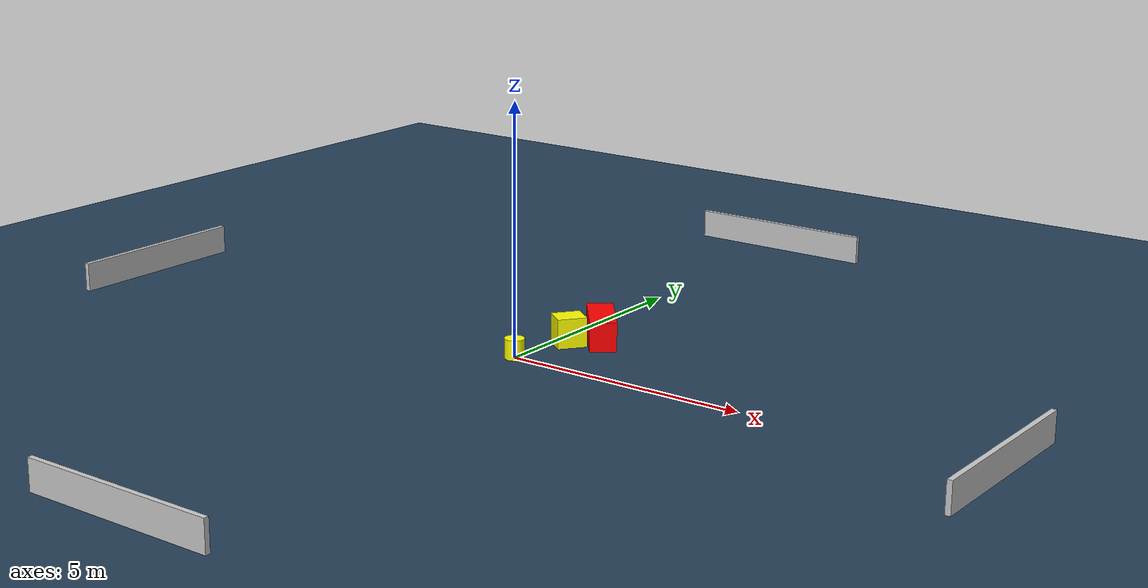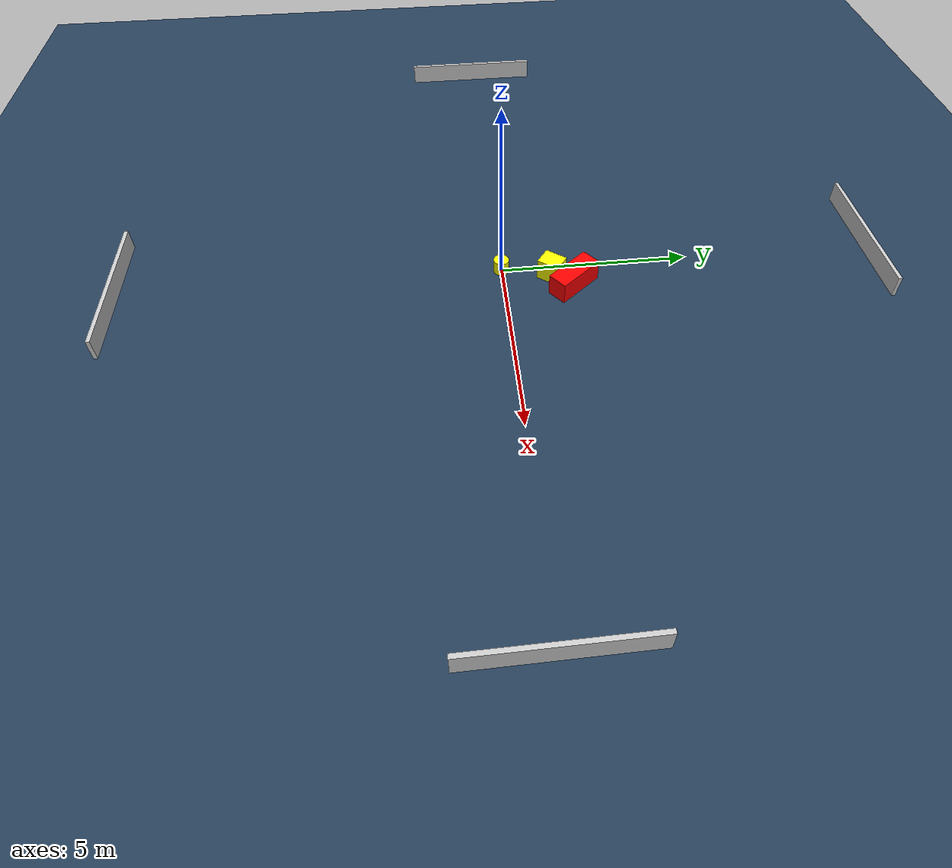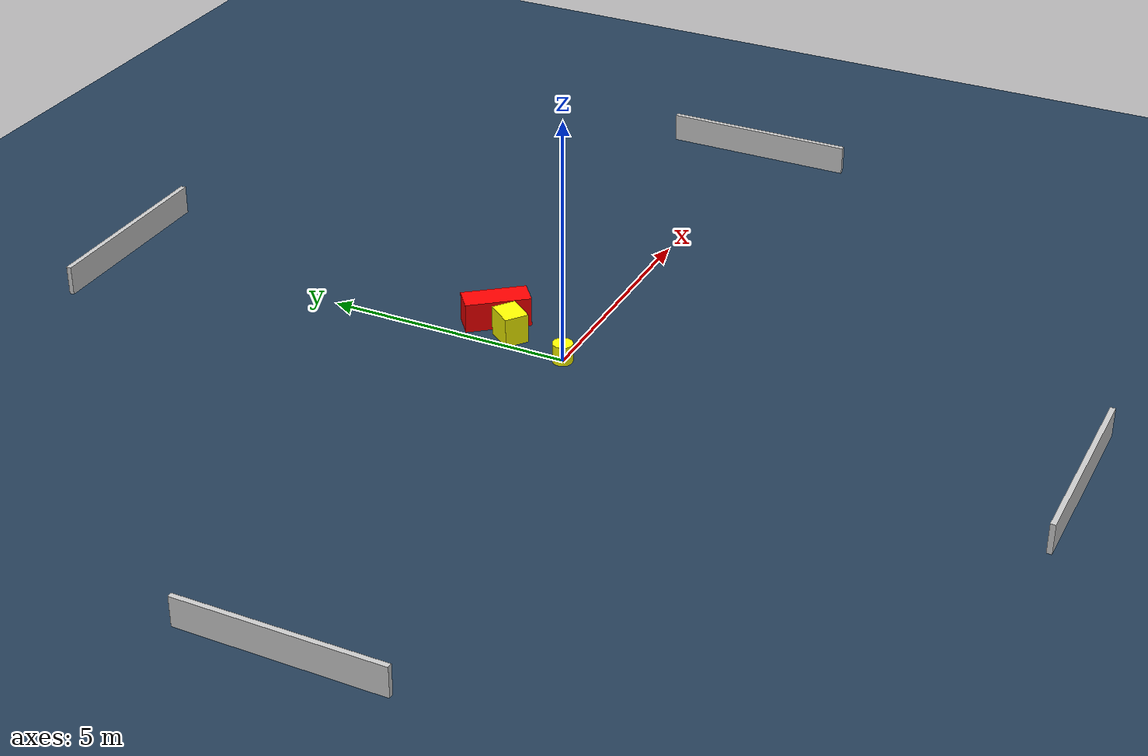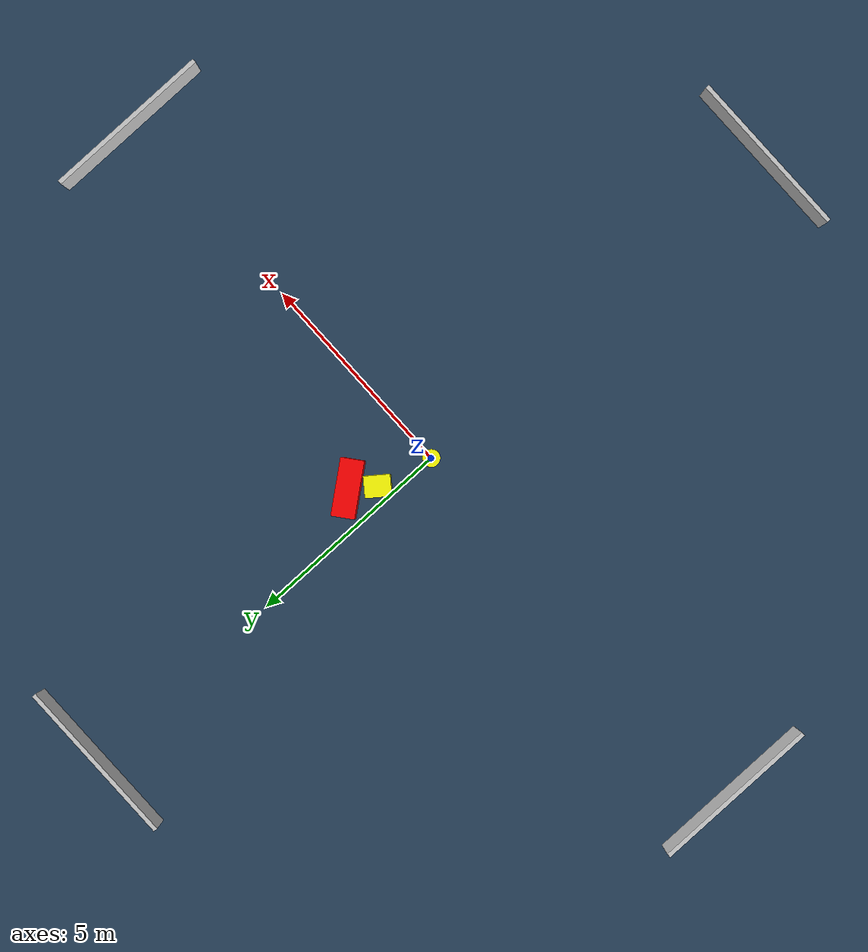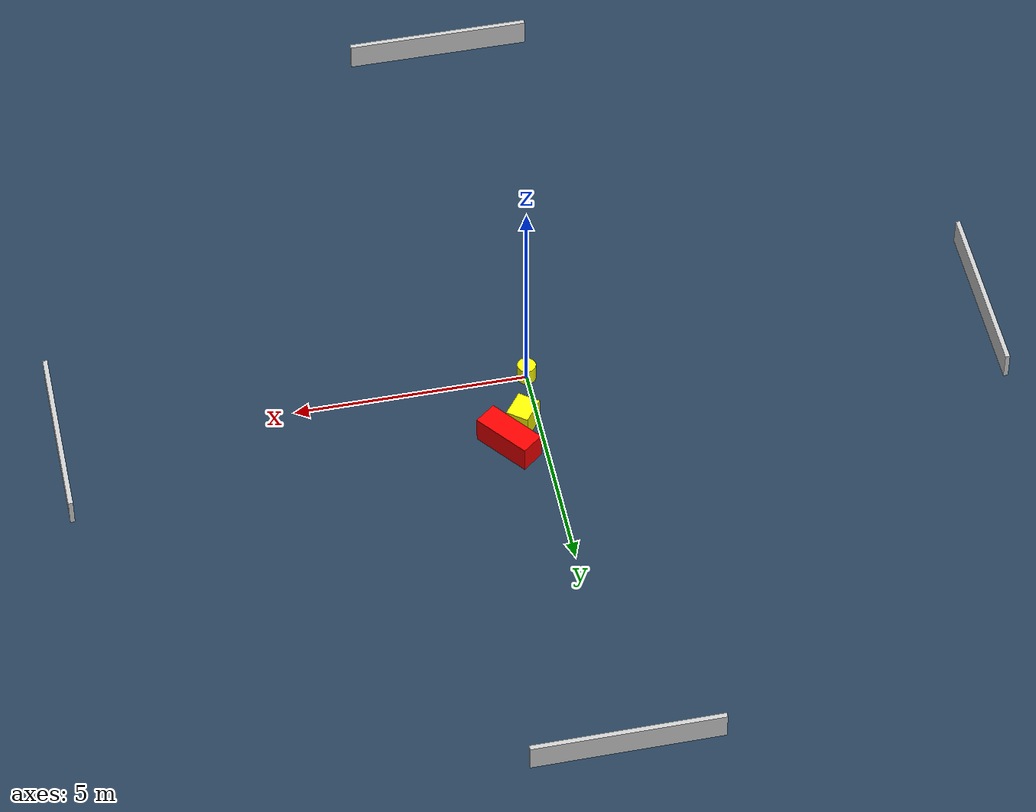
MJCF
<?xml version="1.0" ?>
<mujoco model="generated_environment">
  <option timestep="0.01" integrator="RK4" cone="elliptic"/>
  <default>
    <geom density="1"/>
  </default>
  <asset>
    <texture builtin="gradient" height="3072" name="skybox" rgb1="0.3 0.5 0.7" rgb2="0 0 0" type="skybox" width="512"/>
    <texture builtin="checker" height="300" name="groundplane" rgb1="0.2 0.3 0.4" rgb2="0.1 0.2 0.3" type="2d" width="300"/>
    <material name="groundplane" reflectance="0.2" texrepeat="5 5" texture="groundplane"/>
  </asset>
  <worldbody>
    <light dir="0 0 -1" directional="true" pos="0 0 1.5"/>
    <geom condim="3" friction="0.5 0.005 0.001" material="groundplane" name="floor" pos="0 0 0" size="0 0 0.05" type="plane"/>
    <body name="walls">
      <geom name="wall_1" condim="4" pos="-10.0 0.0 0.3" rgba="0.800000011920929 0.800000011920929 0.800000011920929 1.0" size="0.05 2.0 0.3" type="box"/>
      <geom name="wall_2" condim="4" pos="10.0 0.0 0.3" rgba="0.800000011920929 0.800000011920929 0.800000011920929 1.0" size="0.05 2.0 0.3" type="box"/>
      <geom name="wall_3" condim="4" pos="0.0 -10.0 0.3" rgba="0.800000011920929 0.800000011920929 0.800000011920929 1.0" size="2.0 0.05 0.3" type="box"/>
      <geom name="wall_4" condim="4" pos="0.0 10.0 0.3" rgba="0.800000011920929 0.800000011920929 0.800000011920929 1.0" size="2.0 0.05 0.3" type="box"/>
    </body>
    <body name="robot">
      <joint name="joint_x" type="slide" pos="0 0 0" axis="1 0 0"/>
      <joint name="joint_y" type="slide" pos="0 0 0" axis="0 1 0"/>
      <geom name="robot" type="cylinder" pos="0.0 0.0 0.2" size="0.2 0.2 0.0" mass="5.0" friction="1.0 0.005 0.0001" condim="4" rgba="1.0 1.0 0.0 1.0"/>
    </body>
    <body name="obstacle_1_movable">
      <geom name="obstacle_1_movable" condim="4" pos="0.3413959692247457 1.2977532700070198 0.3" euler="0 0 233.00671682260568" friction="0.0 0.005 0.001" rgba="1.0 1.0 0.0 1.0" size="0.2999090183845803 0.2454687757543004 0.3" type="box" mass="0.1"/>
      <joint type="free"/>
    </body>
    <body name="obstacle_2_static">
      <geom name="obstacle_2_static" condim="4" pos="0.7498753243521729 1.8187634917416844 0.3" euler="0 0 218.26884280257326" friction="0.0 0.005 0.001" rgba="1.0 0.0 0.0 1.0" size="0.2674030915570615 0.6575706784810503 0.3" type="box"/>
    </body>
  </worldbody>
  <actuator>
    <motor name="actuator_x" joint="joint_x" gear="1" ctrlrange="-1 1"/>
    <motor name="actuator_y" joint="joint_y" gear="1" ctrlrange="-1 1"/>
  </actuator>
</mujoco>
